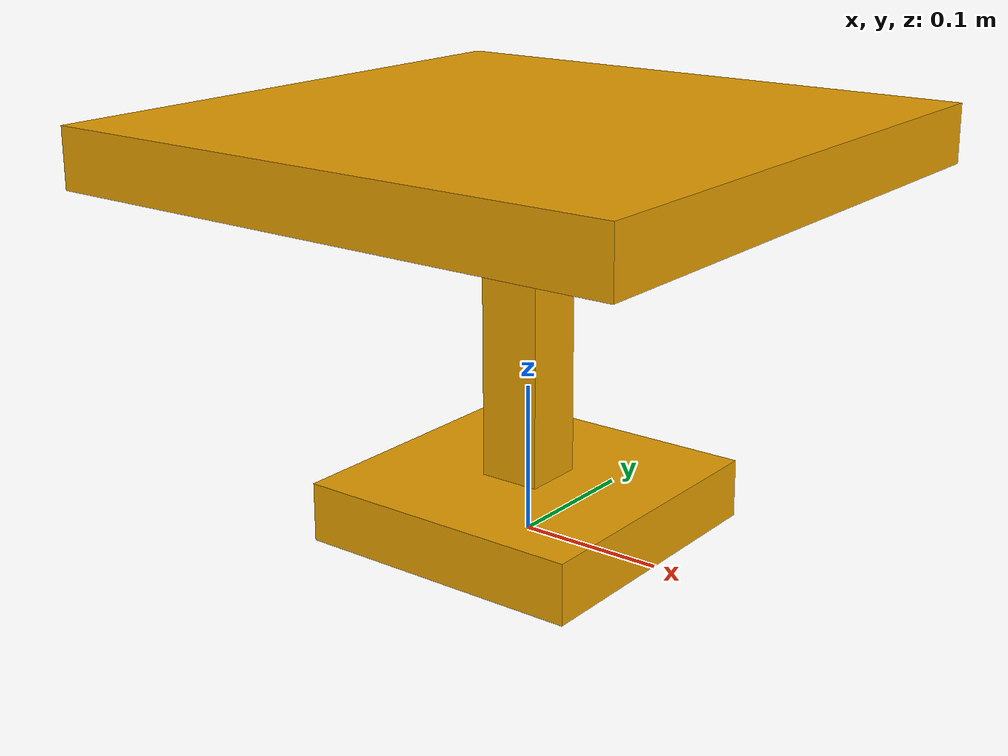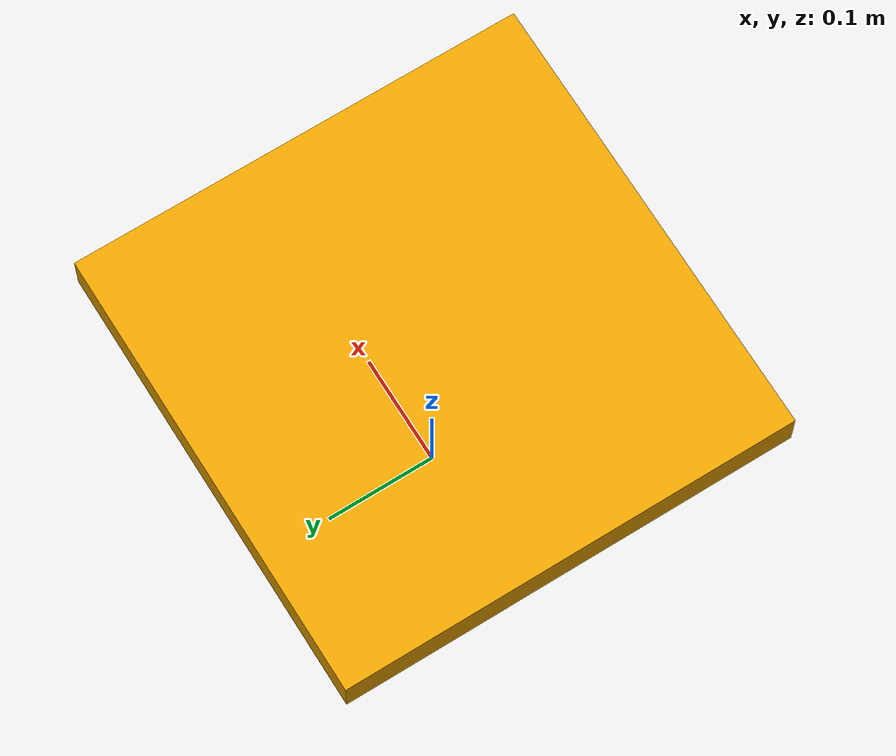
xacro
<?xml version="1.0"?>

<robot xmlns:xacro="http://ros.org/wiki/xacro" name="table">
    <gazebo>
        <static>true</static>
    </gazebo>

    <xacro:property name="x_base_offset" value="0" />
    <xacro:property name="y_base_offset" value="0" />
    <xacro:property name="z_base_offset" value="0.02" />
    <xacro:property name="x_base_dimension" value="0.2" />
    <xacro:property name="y_base_dimension" value="0.2" />
    <xacro:property name="z_base_dimension" value="0.04" />

    <xacro:property name="column_h" value="0.2" />
    <xacro:property name="x_base_column" value="0.042" />
    <xacro:property name="y_base_column" value="${x_base_column}" />
    <xacro:property name="z_max_column" value="${z_base_dimension + column_h}" />

    <xacro:property name="x_surface_dimension" value="0.4" />
    <xacro:property name="y_surface_dimension" value="0.4" />
    <xacro:property name="z_surface_dimension" value="${z_base_dimension}" />
    <xacro:property name="z_max_surface" value="${z_max_column + z_surface_dimension}" />

    <xacro:macro name="table_block"
        params="name x_dim y_dim z_dim x_offset y_offset z_offset">

        <visual name="${name}">
            <origin xyz="${x_offset} ${y_offset} ${z_offset}" rpy="0 0 0" />
            <geometry>
                <box size="${x_dim} ${y_dim} ${z_dim}" />
            </geometry>
        </visual>

        <collision name="${name}">
            <origin xyz="${x_offset} ${y_offset} ${z_offset}" rpy="0 0 0" />
            <geometry>
                <box size="${x_dim} ${y_dim} ${z_dim}" />
            </geometry>
        </collision>
    </xacro:macro>

    <link name="table_link">

        <inertial>
            <origin xyz="0 0 0" rpy="0 0 0" />
            <mass value="1" />
            <inertia
                ixx="0.05" ixy="0.0" ixz="0.0"
                iyy="0.05" iyz="0.0"
                izz="0.05" />
        </inertial>

        <xacro:table_block name="base" x_offset="0"
            y_offset="${y_base_offset}" z_offset="${z_base_offset}"
            x_dim="${x_base_dimension}"
            y_dim="${y_base_dimension}" z_dim="${z_base_dimension}">
        </xacro:table_block>

        <xacro:table_block name="column"
            x_offset="${x_base_offset}"
            y_offset="${y_base_offset}" z_offset="${(z_max_column+z_base_dimension)/2}"
            x_dim="${x_base_column}" y_dim="${y_base_column}" z_dim="${column_h}">
        </xacro:table_block>

        <xacro:table_block name="surface"
            x_offset="${x_base_offset}" y_offset="${y_base_offset}"
            z_offset="${(z_max_column +
        z_max_surface)/2}"
            x_dim="${x_surface_dimension}"
            y_dim="${y_surface_dimension}" z_dim="${z_surface_dimension}">
        </xacro:table_block>
    </link>

</robot>
